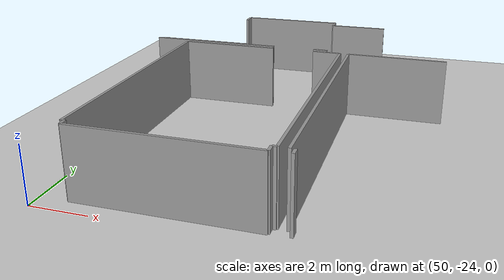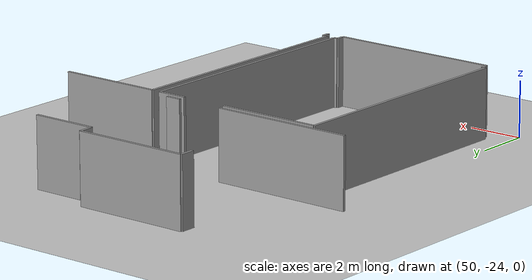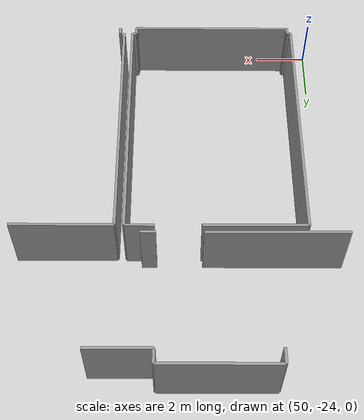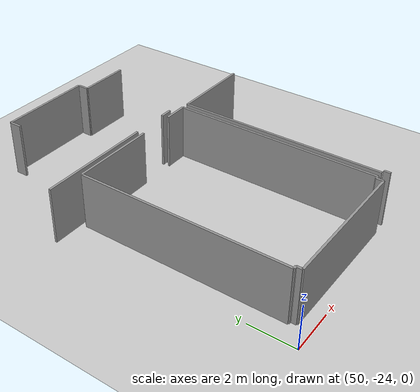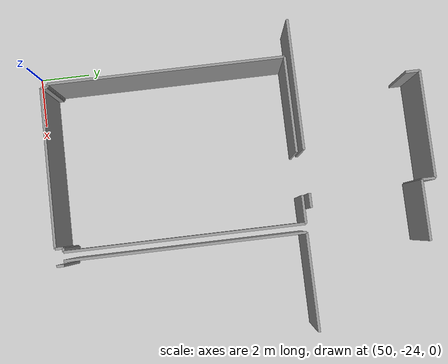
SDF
<sdf version="1.6">
 <world name="default">
  <model name="ground_plane">
   <static>1</static>
   <link name="link">
    <collision name="collision">
     <geometry><plane><normal>0 0 1</normal><size>100 100</size></plane></geometry>
     <surface><friction><ode><mu>100</mu><mu2>50</mu2></ode></friction></surface>
    </collision>
    <visual name="visual">
     <cast_shadows>0</cast_shadows>
     <geometry><plane><normal>0 0 1</normal><size>100 100</size></plane></geometry>
     <material>
      <script><uri>file://media/materials/scripts/gazebo.material</uri><name>Gazebo/Grey</name></script>
     </material>
    </visual>
   </link>
  </model>
  <model name="0510032194_A_40_1_202">
   <static>1</static>
   <link name="Wall_207">
    <collision name="Wall_207_Collision">
     <geometry><box><size>0.259365811217 0.1 2.5</size></box></geometry>
     <pose>0.129682905608 0 1.25 0 0 0</pose>
    </collision>
    <visual name="Wall_207_Visual">
     <pose>0.129682905608 0 1.25 0 0 0</pose>
     <geometry><box><size>0.259365811217 0.1 2.5</size></box></geometry>
     <material>
      <script><uri>file://media/materials/scripts/gazebo.material</uri><name>Gazebo/Grey</name></script>
      <ambient>1 1 1 1</ambient>
     </material>
    </visual>
    <pose>111.883577521 -46.86392186 0 0 0 1.57079632679</pose>
   </link>
   <link name="Wall_208">
    <collision name="Wall_208_Collision">
     <geometry><box><size>0.134382482011 0.1 2.5</size></box></geometry>
     <pose>0.0671912410057 0 1.25 0 0 0</pose>
    </collision>
    <visual name="Wall_208_Visual">
     <pose>0.0671912410057 0 1.25 0 0 0</pose>
     <geometry><box><size>0.134382482011 0.1 2.5</size></box></geometry>
     <material>
      <script><uri>file://media/materials/scripts/gazebo.material</uri><name>Gazebo/Grey</name></script>
      <ambient>1 1 1 1</ambient>
     </material>
    </visual>
    <pose>111.883577521 -46.6045560488 0 0 0 3.14159265359</pose>
   </link>
   <link name="Wall_209">
    <collision name="Wall_209_Collision">
     <geometry><box><size>9.22768177517 0.1 2.5</size></box></geometry>
     <pose>4.61384088758 0 1.25 0 0 0</pose>
    </collision>
    <visual name="Wall_209_Visual">
     <pose>4.61384088758 0 1.25 0 0 0</pose>
     <geometry><box><size>9.22768177517 0.1 2.5</size></box></geometry>
     <material>
      <script><uri>file://media/materials/scripts/gazebo.material</uri><name>Gazebo/Grey</name></script>
      <ambient>1 1 1 1</ambient>
     </material>
    </visual>
    <pose>111.749195039 -46.6045560488 0 0 0 1.57079632679</pose>
   </link>
   <link name="Wall_210">
    <collision name="Wall_210_Collision">
     <geometry><box><size>3.75305631236 0.1 2.5</size></box></geometry>
     <pose>1.87652815618 0 1.25 0 0 0</pose>
    </collision>
    <visual name="Wall_210_Visual">
     <pose>1.87652815618 0 1.25 0 0 0</pose>
     <geometry><box><size>3.75305631236 0.1 2.5</size></box></geometry>
     <material>
      <script><uri>file://media/materials/scripts/gazebo.material</uri><name>Gazebo/Grey</name></script>
      <ambient>1 1 1 1</ambient>
     </material>
    </visual>
    <pose>111.749195039 -37.3768742736 0 0 0 0.0</pose>
   </link>
   <link name="Wall_211">
    <collision name="Wall_211_Collision">
     <geometry><box><size>1.07836226113 0.1 2.5</size></box></geometry>
     <pose>0.539181130566 0 1.25 0 0 0</pose>
    </collision>
    <visual name="Wall_211_Visual">
     <pose>0.539181130566 0 1.25 0 0 0</pose>
     <geometry><box><size>1.07836226113 0.1 2.5</size></box></geometry>
     <material>
      <script><uri>file://media/materials/scripts/gazebo.material</uri><name>Gazebo/Grey</name></script>
      <ambient>1 1 1 1</ambient>
     </material>
    </visual>
    <pose>117.154724027 -37.3768742736 0 0 0 0.0</pose>
   </link>
   <link name="Wall_212">
    <collision name="Wall_212_Collision">
     <geometry><box><size>9.20481897105 0.1 2.5</size></box></geometry>
     <pose>4.60240948552 0 1.25 0 0 0</pose>
    </collision>
    <visual name="Wall_212_Visual">
     <pose>4.60240948552 0 1.25 0 0 0</pose>
     <geometry><box><size>9.20481897105 0.1 2.5</size></box></geometry>
     <material>
      <script><uri>file://media/materials/scripts/gazebo.material</uri><name>Gazebo/Grey</name></script>
      <ambient>1 1 1 1</ambient>
     </material>
    </visual>
    <pose>118.233086288 -37.3768742736 0 0 0 -1.57079632679</pose>
   </link>
   <link name="Wall_213">
    <collision name="Wall_213_Collision">
     <geometry><box><size>0.153688849937 0.1 2.5</size></box></geometry>
     <pose>0.0768444249687 0 1.25 0 0 0</pose>
    </collision>
    <visual name="Wall_213_Visual">
     <pose>0.0768444249687 0 1.25 0 0 0</pose>
     <geometry><box><size>0.153688849937 0.1 2.5</size></box></geometry>
     <material>
      <script><uri>file://media/materials/scripts/gazebo.material</uri><name>Gazebo/Grey</name></script>
      <ambient>1 1 1 1</ambient>
     </material>
    </visual>
    <pose>118.233086288 -46.5816932447 0 0 0 3.14159265359</pose>
   </link>
   <link name="Wall_214">
    <collision name="Wall_214_Collision">
     <geometry><box><size>0.304964403884 0.1 2.5</size></box></geometry>
     <pose>0.152482201942 0 1.25 0 0 0</pose>
    </collision>
    <visual name="Wall_214_Visual">
     <pose>0.152482201942 0 1.25 0 0 0</pose>
     <geometry><box><size>0.304964403884 0.1 2.5</size></box></geometry>
     <material>
      <script><uri>file://media/materials/scripts/gazebo.material</uri><name>Gazebo/Grey</name></script>
      <ambient>1 1 1 1</ambient>
     </material>
    </visual>
    <pose>118.079397438 -46.5816932447 0 0 0 -1.57079632679</pose>
   </link>
   <link name="Wall_215">
    <collision name="Wall_215_Collision">
     <geometry><box><size>6.19586163208 0.1 2.5</size></box></geometry>
     <pose>3.09793081604 0 1.25 0 0 0</pose>
    </collision>
    <visual name="Wall_215_Visual">
     <pose>3.09793081604 0 1.25 0 0 0</pose>
     <geometry><box><size>6.19586163208 0.1 2.5</size></box></geometry>
     <material>
      <script><uri>file://media/materials/scripts/gazebo.material</uri><name>Gazebo/Grey</name></script>
      <ambient>1 1 1 1</ambient>
     </material>
    </visual>
    <pose>118.079397438 -46.8866576486 0 0 0 3.13792313337</pose>
   </link>
   <link name="Wall_216">
    <collision name="Wall_216_Collision">
     <geometry><box><size>0.292262846038 0.1 2.5</size></box></geometry>
     <pose>0.146131423019 0 1.25 0 0 0</pose>
    </collision>
    <visual name="Wall_216_Visual">
     <pose>0.146131423019 0 1.25 0 0 0</pose>
     <geometry><box><size>0.292262846038 0.1 2.5</size></box></geometry>
     <material>
      <script><uri>file://media/materials/scripts/gazebo.material</uri><name>Gazebo/Grey</name></script>
      <ambient>1 1 1 1</ambient>
     </material>
    </visual>
    <pose>118.734797823 -46.8935164898 0 0 0 1.57079632679</pose>
   </link>
   <link name="Wall_218">
    <collision name="Wall_218_Collision">
     <geometry><box><size>9.21167781228 0.1 2.5</size></box></geometry>
     <pose>4.60583890614 0 1.25 0 0 0</pose>
    </collision>
    <visual name="Wall_218_Visual">
     <pose>4.60583890614 0 1.25 0 0 0</pose>
     <geometry><box><size>9.21167781228 0.1 2.5</size></box></geometry>
     <material>
      <script><uri>file://media/materials/scripts/gazebo.material</uri><name>Gazebo/Grey</name></script>
      <ambient>1 1 1 1</ambient>
     </material>
    </visual>
    <pose>118.567137259 -46.6012536438 0 0 0 1.57079632679</pose>
   </link>
   <link name="Wall_219">
    <collision name="Wall_219_Collision">
     <geometry><box><size>3.72536691625 0.1 2.5</size></box></geometry>
     <pose>1.86268345813 0 1.25 0 0 0</pose>
    </collision>
    <visual name="Wall_219_Visual">
     <pose>1.86268345813 0 1.25 0 0 0</pose>
     <geometry><box><size>3.72536691625 0.1 2.5</size></box></geometry>
     <material>
      <script><uri>file://media/materials/scripts/gazebo.material</uri><name>Gazebo/Grey</name></script>
      <ambient>1 1 1 1</ambient>
     </material>
    </visual>
    <pose>118.567137259 -37.3895758315 0 0 0 0.0</pose>
   </link>
   <link name="Wall_398">
    <collision name="Wall_398_Collision">
     <geometry><box><size>0.547437143166 0.1 2.5</size></box></geometry>
     <pose>0.273718571583 0 1.25 0 0 0</pose>
    </collision>
    <visual name="Wall_398_Visual">
     <pose>0.273718571583 0 1.25 0 0 0</pose>
     <geometry><box><size>0.547437143166 0.1 2.5</size></box></geometry>
     <material>
      <script><uri>file://media/materials/scripts/gazebo.material</uri><name>Gazebo/Grey</name></script>
      <ambient>1 1 1 1</ambient>
     </material>
    </visual>
    <pose>112.901607382 -32.8129505084 0 0 0 1.57079632679</pose>
   </link>
   <link name="Wall_399">
    <collision name="Wall_399_Collision">
     <geometry><box><size>4.19087901131 0.1 2.5</size></box></geometry>
     <pose>2.09543950566 0 1.25 0 0 0</pose>
    </collision>
    <visual name="Wall_399_Visual">
     <pose>2.09543950566 0 1.25 0 0 0</pose>
     <geometry><box><size>4.19087901131 0.1 2.5</size></box></geometry>
     <material>
      <script><uri>file://media/materials/scripts/gazebo.material</uri><name>Gazebo/Grey</name></script>
      <ambient>1 1 1 1</ambient>
     </material>
    </visual>
    <pose>112.901607382 -32.2655133652 0 0 0 0.0</pose>
   </link>
   <link name="Wall_400">
    <collision name="Wall_400_Collision">
     <geometry><box><size>0.517969528963 0.1 2.5</size></box></geometry>
     <pose>0.258984764481 0 1.25 0 0 0</pose>
    </collision>
    <visual name="Wall_400_Visual">
     <pose>0.258984764481 0 1.25 0 0 0</pose>
     <geometry><box><size>0.517969528963 0.1 2.5</size></box></geometry>
     <material>
      <script><uri>file://media/materials/scripts/gazebo.material</uri><name>Gazebo/Grey</name></script>
      <ambient>1 1 1 1</ambient>
     </material>
    </visual>
    <pose>117.092486393 -32.2655133652 0 0 0 -1.57079632679</pose>
   </link>
   <link name="Wall_401">
    <collision name="Wall_401_Collision">
     <geometry><box><size>2.33835679946 0.1 2.5</size></box></geometry>
     <pose>1.16917839973 0 1.25 0 0 0</pose>
    </collision>
    <visual name="Wall_401_Visual">
     <pose>1.16917839973 0 1.25 0 0 0</pose>
     <geometry><box><size>2.33835679946 0.1 2.5</size></box></geometry>
     <material>
      <script><uri>file://media/materials/scripts/gazebo.material</uri><name>Gazebo/Grey</name></script>
      <ambient>1 1 1 1</ambient>
     </material>
    </visual>
    <pose>117.092486393 -32.7834828942 0 0 0 0.0</pose>
   </link>
   <link name="Wall_420">
    <collision name="Wall_420_Collision">
     <geometry><box><size>0.560138701012 0.1 2.5</size></box></geometry>
     <pose>0.280069350506 0 1.25 0 0 0</pose>
    </collision>
    <visual name="Wall_420_Visual">
     <pose>0.280069350506 0 1.25 0 0 0</pose>
     <geometry><box><size>0.560138701012 0.1 2.5</size></box></geometry>
     <material>
      <script><uri>file://media/materials/scripts/gazebo.material</uri><name>Gazebo/Grey</name></script>
      <ambient>1 1 1 1</ambient>
     </material>
    </visual>
    <pose>117.665326652 -37.0964238764 0 0 0 3.14159265359</pose>
   </link>
   <link name="Wall_421">
    <collision name="Wall_421_Collision">
     <geometry><box><size>5.14527406786 0.1 2.5</size></box></geometry>
     <pose>2.57263703393 0 1.25 0 0 0</pose>
    </collision>
    <visual name="Wall_421_Visual">
     <pose>2.57263703393 0 1.25 0 0 0</pose>
     <geometry><box><size>5.14527406786 0.1 2.5</size></box></geometry>
     <material>
      <script><uri>file://media/materials/scripts/gazebo.material</uri><name>Gazebo/Grey</name></script>
      <ambient>1 1 1 1</ambient>
     </material>
    </visual>
    <pose>115.43620325 -37.0964238764 0 0 0 3.14159265359</pose>
   </link>
   <pose>-60.9 23.465744216 0 0 0 0</pose>
  </model>
 </world>
</sdf>
